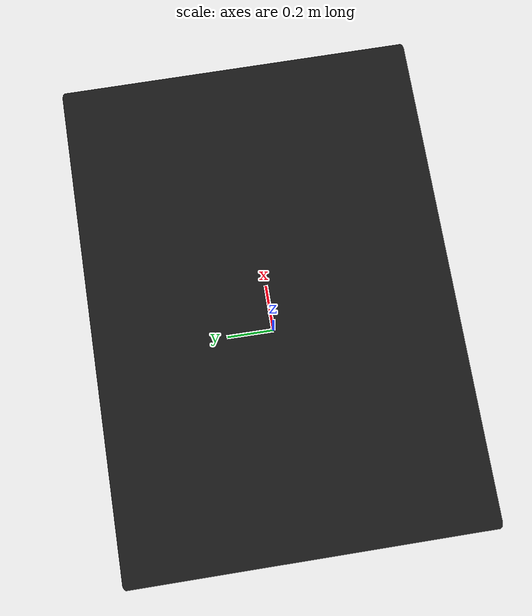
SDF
<?xml version="1.0"?>
<sdf version="1.4">
  <model name="big_table">
    <static>true</static>
    <link name="link">
      <pose>0 0 0 0 0 0</pose>
      <collision name="collision">
        <geometry>
          <mesh>
             <uri>model://big_table/big_table_collision.dae</uri>
	     <scale>0.7 0.7 0.7</scale>
          </mesh>
        </geometry>
      </collision>
      <visual name="visual">
         <geometry>
          <mesh>
            <uri>model://big_table/big_table_visual.dae</uri>
		<scale>0.7 0.7 0.7</scale>
          </mesh>
        </geometry>
      </visual>
    </link>
  </model>
</sdf>
